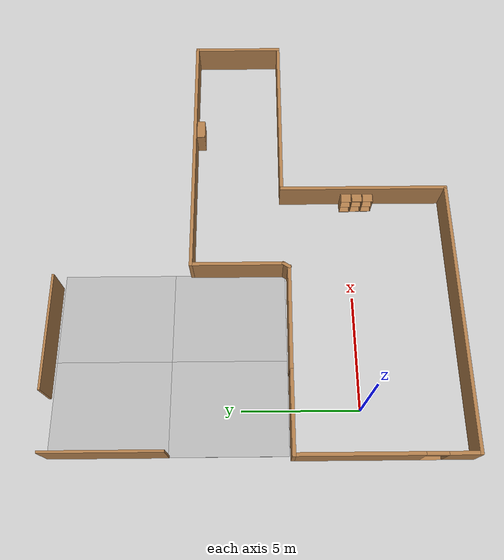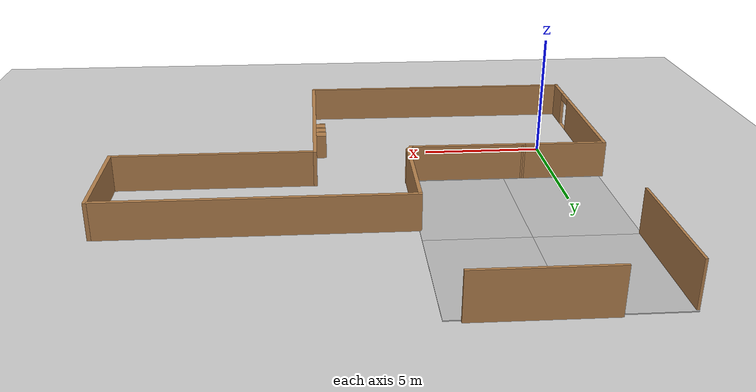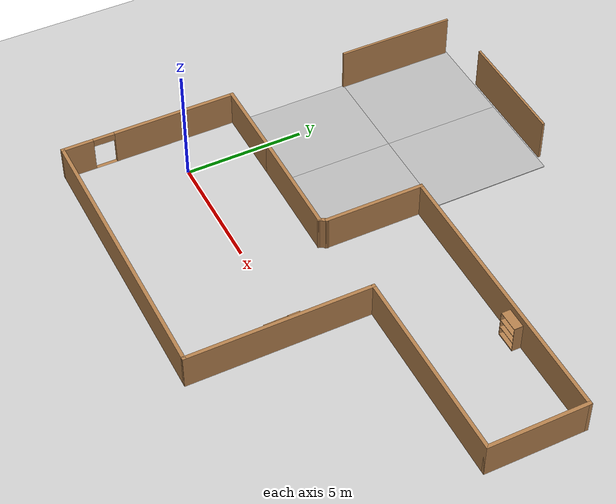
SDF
<sdf version="1.7">
 <world name="default">
  <model name="ground_plane">
   <static>1</static>
   <link name="link">
    <collision name="collision">
     <geometry><plane><normal>0 0 1</normal><size>100 100</size></plane></geometry>
     <surface>
      <contact><collide_bitmask>65535</collide_bitmask></contact>
      <friction><ode><mu>100</mu><mu2>50</mu2></ode></friction>
     </surface>
    </collision>
    <visual name="visual">
     <cast_shadows>0</cast_shadows>
     <geometry><plane><normal>0 0 1</normal><size>100 100</size></plane></geometry>
     <material>
      <script><uri>file://media/materials/scripts/gazebo.material</uri><name>Gazebo/Grey</name></script>
     </material>
    </visual>
   </link>
  </model>
  <model name="Untitled">
   <pose>8.035 1.37 0 0 -0 0</pose>
   <link name="Wall_10">
    <collision name="Wall_10_Collision">
     <geometry><box><size>4.25 0.15 1.5</size></box></geometry>
     <pose>0 0 0.75 0 -0 0</pose>
    </collision>
    <visual name="Wall_10_Visual">
     <pose>0 0 0.75 0 -0 0</pose>
     <geometry><box><size>4.25 0.15 1.5</size></box></geometry>
     <material>
      <script><uri>file://media/materials/scripts/gazebo.material</uri><name>Gazebo/Wood</name></script>
      <ambient>1 1 1 1</ambient>
     </material>
     <meta><layer>0</layer></meta>
    </visual>
    <pose>9.975 3.8 0 0 -0 1.5708</pose>
   </link>
   <link name="Wall_11">
    <collision name="Wall_11_Collision">
     <geometry><box><size>12 0.15 1.5</size></box></geometry>
     <pose>0 0 0.75 0 -0 0</pose>
    </collision>
    <visual name="Wall_11_Visual">
     <pose>0 0 0.75 0 -0 0</pose>
     <geometry><box><size>12 0.15 1.5</size></box></geometry>
     <material>
      <script><uri>file://media/materials/scripts/gazebo.material</uri><name>Gazebo/Wood</name></script>
      <ambient>1 1 1 1</ambient>
     </material>
     <meta><layer>0</layer></meta>
    </visual>
    <pose>4.05 5.85 0 0 -0 3.14159</pose>
   </link>
   <link name="Wall_12">
    <collision name="Wall_12_Collision">
     <geometry><box><size>4.25 0.15 1.5</size></box></geometry>
     <pose>0 0 0.75 0 -0 0</pose>
    </collision>
    <visual name="Wall_12_Visual">
     <pose>0 0 0.75 0 -0 0</pose>
     <geometry><box><size>4.25 0.15 1.5</size></box></geometry>
     <material>
      <script><uri>file://media/materials/scripts/gazebo.material</uri><name>Gazebo/Wood</name></script>
      <ambient>1 1 1 1</ambient>
     </material>
     <meta><layer>0</layer></meta>
    </visual>
    <pose>-1.875 3.8 0 0 -0 -1.5708</pose>
   </link>
   <link name="Wall_14">
    <collision name="Wall_14_Collision">
     <geometry><box><size>4.75 0.15 1.5</size></box></geometry>
     <pose>0 0 0.75 0 -0 0</pose>
    </collision>
    <visual name="Wall_14_Visual">
     <pose>0 0 0.75 0 -0 0</pose>
     <geometry><box><size>4.75 0.15 1.5</size></box></geometry>
     <material>
      <script><uri>file://media/materials/scripts/gazebo.material</uri><name>Gazebo/Wood</name></script>
      <ambient>1 1 1 1</ambient>
     </material>
     <meta><layer>0</layer></meta>
    </visual>
    <pose>-4.325 1.5155 0 0 -0 -0.006739</pose>
   </link>
   <link name="Wall_15">
    <collision name="Wall_15_Collision">
     <geometry><box><size>0.441548 0.15 1.5</size></box></geometry>
     <pose>0 0 0.75 0 -0 0</pose>
    </collision>
    <visual name="Wall_15_Visual">
     <pose>0 0 0.75 0 -0 0</pose>
     <geometry><box><size>0.441548 0.15 1.5</size></box></geometry>
     <material>
      <script><uri>file://media/materials/scripts/gazebo.material</uri><name>Gazebo/Wood</name></script>
      <ambient>1 1 1 1</ambient>
     </material>
     <meta><layer>0</layer></meta>
    </visual>
    <pose>-1.95 1.625 0 0 -0 1.03038</pose>
   </link>
   <link name="Wall_5">
    <collision name="Wall_5_Collision">
     <geometry><box><size>3.5 0.15 1.5</size></box></geometry>
     <pose>0 0 0.75 0 -0 0</pose>
    </collision>
    <visual name="Wall_5_Visual">
     <pose>0 0 0.75 0 -0 0</pose>
     <geometry><box><size>3.5 0.15 1.5</size></box></geometry>
     <material>
      <script><uri>file://media/materials/scripts/gazebo.material</uri><name>Gazebo/Wood</name></script>
      <ambient>1 1 1 1</ambient>
     </material>
     <meta><layer>0</layer></meta>
    </visual>
    <pose>-8.3 1.531 0 0 -0 3.14159</pose>
   </link>
   <link name="Wall_6">
    <pose>-9.975 -2.1595 0 0 -0 -1.5708</pose>
    <visual name="Wall_6_Visual_0">
     <pose>-1.12851 0 0.75 0 -0 0</pose>
     <geometry><box><size>5.27397 0.15 1.5</size></box></geometry>
     <material>
      <script><uri>file://media/materials/scripts/gazebo.material</uri><name>Gazebo/Wood</name></script>
      <ambient>1 1 1 1</ambient>
     </material>
     <meta><layer>0</layer></meta>
    </visual>
    <collision name="Wall_6_Collision_0">
     <geometry><box><size>5.27397 0.15 1.5</size></box></geometry>
     <pose>-1.12851 0 0.75 0 -0 0</pose>
    </collision>
    <visual name="Wall_6_Visual_1">
     <pose>3.08699 0 0.75 0 -0 0</pose>
     <geometry><box><size>1.35703 0.15 1.5</size></box></geometry>
     <material>
      <script><uri>file://media/materials/scripts/gazebo.material</uri><name>Gazebo/Wood</name></script>
      <ambient>1 1 1 1</ambient>
     </material>
     <meta><layer>0</layer></meta>
    </visual>
    <collision name="Wall_6_Collision_1">
     <geometry><box><size>1.35703 0.15 1.5</size></box></geometry>
     <pose>3.08699 0 0.75 0 -0 0</pose>
    </collision>
    <visual name="Wall_6_Visual_2">
     <pose>1.95847 0 0 0 -0 0</pose>
     <geometry><box><size>0.9 0.15 0</size></box></geometry>
     <material>
      <script><uri>file://media/materials/scripts/gazebo.material</uri><name>Gazebo/Wood</name></script>
      <ambient>1 1 1 1</ambient>
     </material>
     <meta><layer>0</layer></meta>
    </visual>
    <collision name="Wall_6_Collision_2">
     <geometry><box><size>0.9 0.15 0</size></box></geometry>
     <pose>1.95847 0 0 0 -0 0</pose>
    </collision>
    <visual name="Wall_6_Visual_3">
     <pose>1.95847 0 1.35 0 -0 0</pose>
     <geometry><box><size>0.9 0.15 0.3</size></box></geometry>
     <material>
      <script><uri>file://media/materials/scripts/gazebo.material</uri><name>Gazebo/Wood</name></script>
      <ambient>1 1 1 1</ambient>
     </material>
     <meta><layer>0</layer></meta>
    </visual>
    <collision name="Wall_6_Collision_3">
     <geometry><box><size>0.9 0.15 0.3</size></box></geometry>
     <pose>1.95847 0 1.35 0 -0 0</pose>
    </collision>
   </link>
   <link name="Wall_7">
    <collision name="Wall_7_Collision">
     <geometry><box><size>12 0.15 1.5</size></box></geometry>
     <pose>0 0 0.75 0 -0 0</pose>
    </collision>
    <visual name="Wall_7_Visual">
     <pose>0 0 0.75 0 -0 0</pose>
     <geometry><box><size>12 0.15 1.5</size></box></geometry>
     <material>
      <script><uri>file://media/materials/scripts/gazebo.material</uri><name>Gazebo/Wood</name></script>
      <ambient>1 1 1 1</ambient>
     </material>
     <meta><layer>0</layer></meta>
    </visual>
    <pose>-4.05 -5.85 0 0 -0 0</pose>
   </link>
   <link name="Wall_8">
    <collision name="Wall_8_Collision">
     <geometry><box><size>7.75 0.15 1.5</size></box></geometry>
     <pose>0 0 0.75 0 -0 0</pose>
    </collision>
    <visual name="Wall_8_Visual">
     <pose>0 0 0.75 0 -0 0</pose>
     <geometry><box><size>7.75 0.15 1.5</size></box></geometry>
     <material>
      <script><uri>file://media/materials/scripts/gazebo.material</uri><name>Gazebo/Wood</name></script>
      <ambient>1 1 1 1</ambient>
     </material>
     <meta><layer>0</layer></meta>
    </visual>
    <pose>1.875 -2.05 0 0 -0 1.5708</pose>
   </link>
   <link name="Wall_9">
    <collision name="Wall_9_Collision">
     <geometry><box><size>8.25 0.15 1.5</size></box></geometry>
     <pose>0 0 0.75 0 -0 0</pose>
    </collision>
    <visual name="Wall_9_Visual">
     <pose>0 0 0.75 0 -0 0</pose>
     <geometry><box><size>8.25 0.15 1.5</size></box></geometry>
     <material>
      <script><uri>file://media/materials/scripts/gazebo.material</uri><name>Gazebo/Wood</name></script>
      <ambient>1 1 1 1</ambient>
     </material>
     <meta><layer>0</layer></meta>
    </visual>
    <pose>5.925 1.75 0 0 -0 0</pose>
   </link>
   <static>1</static>
  </model>
  <model name="mud_box">
   <static>1</static>
   <link name="link">
    <collision name="collision"><geometry><box><size>8 10 0.2</size></box></geometry></collision>
    <visual name="visual_1">
     <pose>-2 2.5 0 0 -0 0</pose>
     <cast_shadows>0</cast_shadows>
     <geometry><box><size>4 5 0.2</size></box></geometry>
     <material>
      <script>
       <uri>model://mud_box/materials/scripts</uri>
       <uri>model://mud_box/materials/textures</uri>
       <name>vrc/mud</name>
      </script>
     </material>
    </visual>
    <visual name="visual_2">
     <pose>2 2.5 0 0 -0 0</pose>
     <cast_shadows>0</cast_shadows>
     <geometry><box><size>4 5 0.2</size></box></geometry>
     <material>
      <script>
       <uri>model://mud_box/materials/scripts</uri>
       <uri>model://mud_box/materials/textures</uri>
       <name>vrc/mud</name>
      </script>
     </material>
    </visual>
    <visual name="visual_3">
     <pose>2 -2.5 0 0 -0 0</pose>
     <cast_shadows>0</cast_shadows>
     <geometry><box><size>4 5 0.2</size></box></geometry>
     <material>
      <script>
       <uri>model://mud_box/materials/scripts</uri>
       <uri>model://mud_box/materials/textures</uri>
       <name>vrc/mud</name>
      </script>
     </material>
    </visual>
    <visual name="visual_4">
     <pose>-2 -2.5 0 0 -0 0</pose>
     <cast_shadows>0</cast_shadows>
     <geometry><box><size>4 5 0.2</size></box></geometry>
     <material>
      <script>
       <uri>model://mud_box/materials/scripts</uri>
       <uri>model://mud_box/materials/textures</uri>
       <name>vrc/mud</name>
      </script>
     </material>
    </visual>
   </link>
   <pose>2.16605 8.01541 -0.090493 0 -0 0</pose>
  </model>
  <model name="fence">
   <static>1</static>
   <link name="link">
    <pose>0 0 0.915 0 -0 0</pose>
    <collision name="collision"><geometry><box><size>0.1 5 1.83</size></box></geometry></collision>
    <visual name="visual">
     <cast_shadows>0</cast_shadows>
     <geometry><box><size>0.1 5 1.83</size></box></geometry>
     <material>
      <script>
       <uri>https://fuel.ignitionrobotics.org/1.0/athackst/models/fence/2/files/materials/scripts</uri>
       <uri>https://fuel.ignitionrobotics.org/1.0/athackst/models/fence/2/files/materials/textures</uri>
       <name>Fence/WoodBoarding</name>
      </script>
     </material>
    </visual>
   </link>
   <pose>-1.80264 10.4623 0 0 -0 0</pose>
  </model>
  <model name="fence_0">
   <static>1</static>
   <link name="link">
    <pose>0 0 0.915 0 -0 0</pose>
    <collision name="collision"><geometry><box><size>0.1 5 1.83</size></box></geometry></collision>
    <visual name="visual">
     <cast_shadows>0</cast_shadows>
     <geometry><box><size>0.1 5 1.83</size></box></geometry>
     <material>
      <script>
       <uri>https://fuel.ignitionrobotics.org/1.0/athackst/models/fence/2/files/materials/scripts</uri>
       <uri>https://fuel.ignitionrobotics.org/1.0/athackst/models/fence/2/files/materials/textures</uri>
       <name>Fence/WoodBoarding</name>
      </script>
     </material>
    </visual>
   </link>
   <pose>3.10267 13.1276 0 0 -0 1.56884</pose>
  </model>
  <model name="bookshelf">
   <static>1</static>
   <link name="link">
    <inertial><mass>1</mass></inertial>
    <collision name="back">
     <pose>0 0.005 0.6 0 -0 0</pose>
     <geometry><box><size>0.9 0.01 1.2</size></box></geometry>
    </collision>
    <visual name="visual1">
     <pose>0 0.005 0.6 0 -0 0</pose>
     <geometry><box><size>0.9 0.01 1.2</size></box></geometry>
     <material>
      <script><uri>file://media/materials/scripts/gazebo.material</uri><name>Gazebo/Wood</name></script>
     </material>
    </visual>
    <collision name="left_side">
     <pose>0.45 -0.195 0.6 0 -0 0</pose>
     <geometry><box><size>0.02 0.4 1.2</size></box></geometry>
    </collision>
    <visual name="visual2">
     <pose>0.45 -0.195 0.6 0 -0 0</pose>
     <geometry><box><size>0.02 0.4 1.2</size></box></geometry>
     <material>
      <script><uri>file://media/materials/scripts/gazebo.material</uri><name>Gazebo/Wood</name></script>
     </material>
    </visual>
    <collision name="right_side">
     <pose>-0.45 -0.195 0.6 0 -0 0</pose>
     <geometry><box><size>0.02 0.4 1.2</size></box></geometry>
    </collision>
    <visual name="visual3">
     <pose>-0.45 -0.195 0.6 0 -0 0</pose>
     <geometry><box><size>0.02 0.4 1.2</size></box></geometry>
     <material>
      <script><uri>file://media/materials/scripts/gazebo.material</uri><name>Gazebo/Wood</name></script>
     </material>
    </visual>
    <collision name="bottom">
     <pose>0 -0.195 0.03 0 -0 0</pose>
     <geometry><box><size>0.88 0.4 0.06</size></box></geometry>
    </collision>
    <visual name="visual4">
     <pose>0 -0.195 0.03 0 -0 0</pose>
     <geometry><box><size>0.88 0.4 0.06</size></box></geometry>
     <material>
      <script><uri>file://media/materials/scripts/gazebo.material</uri><name>Gazebo/Wood</name></script>
     </material>
    </visual>
    <collision name="top">
     <pose>0 -0.195 1.19 0 -0 0</pose>
     <geometry><box><size>0.88 0.4 0.02</size></box></geometry>
    </collision>
    <visual name="visual5">
     <pose>0 -0.195 1.19 0 -0 0</pose>
     <geometry><box><size>0.88 0.4 0.02</size></box></geometry>
     <material>
      <script><uri>file://media/materials/scripts/gazebo.material</uri><name>Gazebo/Wood</name></script>
     </material>
    </visual>
    <collision name="low_shelf">
     <pose>0 -0.195 0.43 0 -0 0</pose>
     <geometry><box><size>0.88 0.4 0.02</size></box></geometry>
    </collision>
    <visual name="visual6">
     <pose>0 -0.195 0.43 0 -0 0</pose>
     <geometry><box><size>0.88 0.4 0.02</size></box></geometry>
     <material>
      <script><uri>file://media/materials/scripts/gazebo.material</uri><name>Gazebo/Wood</name></script>
     </material>
    </visual>
    <collision name="high_shelf">
     <pose>0 -0.195 0.8 0 -0 0</pose>
     <geometry><box><size>0.88 0.4 0.02</size></box></geometry>
    </collision>
    <visual name="visual7">
     <pose>0 -0.195 0.8 0 -0 0</pose>
     <geometry><box><size>0.88 0.4 0.02</size></box></geometry>
     <material>
      <script><uri>file://media/materials/scripts/gazebo.material</uri><name>Gazebo/Wood</name></script>
     </material>
    </visual>
   </link>
   <pose>13.3788 7.16074 0 0 -0 0</pose>
  </model>
  <model name="cabinet">
   <static>1</static>
   <link name="cabinet_bottom_plate">
    <inertial>
     <pose>0 0 -1 0 -0 0</pose>
     <inertia><ixx>2.05</ixx><ixy>0</ixy><ixz>0</ixz><iyy>2.05</iyy><iyz>0</iyz><izz>2.05</izz></inertia>
     <mass>25</mass>
    </inertial>
    <collision name="cabinet_bottom_plate_geom">
     <pose>0 0 0.01 0 -0 0</pose>
     <geometry><box><size>0.45 0.45 0.02</size></box></geometry>
    </collision>
    <visual name="cabinet_bottom_plate_geom_visual">
     <pose>0 0 0.01 0 -0 0</pose>
     <geometry><box><size>0.45 0.45 0.02</size></box></geometry>
     <material>
      <script><uri>file://media/materials/scripts/gazebo.material</uri><name>Gazebo/Wood</name></script>
     </material>
    </visual>
    <collision name="cabinet_bottom_plate_geom_cabinet_back_plate">
     <pose>0.235 0 0.51 0 -0 0</pose>
     <geometry><box><size>0.02 0.45 1.02</size></box></geometry>
    </collision>
    <visual name="cabinet_bottom_plate_geom_cabinet_back_plate_visual">
     <pose>0.235 0 0.51 0 -0 0</pose>
     <geometry><box><size>0.02 0.45 1.02</size></box></geometry>
     <material>
      <script><uri>file://media/materials/scripts/gazebo.material</uri><name>Gazebo/Wood</name></script>
     </material>
    </visual>
    <collision name="cabinet_bottom_plate_geom_cabinet_left_plate">
     <pose>0 0.235 0.51 0 -0 0</pose>
     <geometry><box><size>0.45 0.02 1.02</size></box></geometry>
    </collision>
    <visual name="cabinet_bottom_plate_geom_cabinet_left_plate_visual">
     <pose>0 0.235 0.51 0 -0 0</pose>
     <geometry><box><size>0.45 0.02 1.02</size></box></geometry>
     <material>
      <script><uri>file://media/materials/scripts/gazebo.material</uri><name>Gazebo/Wood</name></script>
     </material>
    </visual>
    <collision name="cabinet_bottom_plate_geom_cabinet_middle_plate">
     <pose>0 0 0.51 0 -0 0</pose>
     <geometry><box><size>0.45 0.45 0.02</size></box></geometry>
    </collision>
    <visual name="cabinet_bottom_plate_geom_cabinet_middle_plate_visual">
     <pose>0 0 0.51 0 -0 0</pose>
     <geometry><box><size>0.45 0.45 0.02</size></box></geometry>
     <material>
      <script><uri>file://media/materials/scripts/gazebo.material</uri><name>Gazebo/Wood</name></script>
     </material>
    </visual>
    <collision name="cabinet_bottom_plate_geom_cabinet_right_plate">
     <pose>0 -0.235 0.51 0 -0 0</pose>
     <geometry><box><size>0.45 0.02 1.02</size></box></geometry>
    </collision>
    <visual name="cabinet_bottom_plate_geom_cabinet_right_plate_visual">
     <pose>0 -0.235 0.51 0 -0 0</pose>
     <geometry><box><size>0.45 0.02 1.02</size></box></geometry>
     <material>
      <script><uri>file://media/materials/scripts/gazebo.material</uri><name>Gazebo/Wood</name></script>
     </material>
    </visual>
    <collision name="cabinet_bottom_plate_geom_cabinet_top_plate">
     <pose>0 0 1.01 0 -0 0</pose>
     <geometry><box><size>0.45 0.45 0.02</size></box></geometry>
    </collision>
    <visual name="cabinet_bottom_plate_geom_cabinet_top_plate_visual">
     <pose>0 0 1.01 0 -0 0</pose>
     <geometry><box><size>0.45 0.45 0.02</size></box></geometry>
     <material>
      <script><uri>file://media/materials/scripts/gazebo.material</uri><name>Gazebo/Wood</name></script>
     </material>
    </visual>
   </link>
   <pose>9.65126 -0.407227 0 0 -0 0</pose>
  </model>
  <model name="cabinet_0">
   <static>1</static>
   <link name="cabinet_bottom_plate">
    <inertial>
     <pose>0 0 -1 0 -0 0</pose>
     <inertia><ixx>2.05</ixx><ixy>0</ixy><ixz>0</ixz><iyy>2.05</iyy><iyz>0</iyz><izz>2.05</izz></inertia>
     <mass>25</mass>
    </inertial>
    <collision name="cabinet_bottom_plate_geom">
     <pose>0 0 0.01 0 -0 0</pose>
     <geometry><box><size>0.45 0.45 0.02</size></box></geometry>
    </collision>
    <visual name="cabinet_bottom_plate_geom_visual">
     <pose>0 0 0.01 0 -0 0</pose>
     <geometry><box><size>0.45 0.45 0.02</size></box></geometry>
     <material>
      <script><uri>file://media/materials/scripts/gazebo.material</uri><name>Gazebo/Wood</name></script>
     </material>
    </visual>
    <collision name="cabinet_bottom_plate_geom_cabinet_back_plate">
     <pose>0.235 0 0.51 0 -0 0</pose>
     <geometry><box><size>0.02 0.45 1.02</size></box></geometry>
    </collision>
    <visual name="cabinet_bottom_plate_geom_cabinet_back_plate_visual">
     <pose>0.235 0 0.51 0 -0 0</pose>
     <geometry><box><size>0.02 0.45 1.02</size></box></geometry>
     <material>
      <script><uri>file://media/materials/scripts/gazebo.material</uri><name>Gazebo/Wood</name></script>
     </material>
    </visual>
    <collision name="cabinet_bottom_plate_geom_cabinet_left_plate">
     <pose>0 0.235 0.51 0 -0 0</pose>
     <geometry><box><size>0.45 0.02 1.02</size></box></geometry>
    </collision>
    <visual name="cabinet_bottom_plate_geom_cabinet_left_plate_visual">
     <pose>0 0.235 0.51 0 -0 0</pose>
     <geometry><box><size>0.45 0.02 1.02</size></box></geometry>
     <material>
      <script><uri>file://media/materials/scripts/gazebo.material</uri><name>Gazebo/Wood</name></script>
     </material>
    </visual>
    <collision name="cabinet_bottom_plate_geom_cabinet_middle_plate">
     <pose>0 0 0.51 0 -0 0</pose>
     <geometry><box><size>0.45 0.45 0.02</size></box></geometry>
    </collision>
    <visual name="cabinet_bottom_plate_geom_cabinet_middle_plate_visual">
     <pose>0 0 0.51 0 -0 0</pose>
     <geometry><box><size>0.45 0.45 0.02</size></box></geometry>
     <material>
      <script><uri>file://media/materials/scripts/gazebo.material</uri><name>Gazebo/Wood</name></script>
     </material>
    </visual>
    <collision name="cabinet_bottom_plate_geom_cabinet_right_plate">
     <pose>0 -0.235 0.51 0 -0 0</pose>
     <geometry><box><size>0.45 0.02 1.02</size></box></geometry>
    </collision>
    <visual name="cabinet_bottom_plate_geom_cabinet_right_plate_visual">
     <pose>0 -0.235 0.51 0 -0 0</pose>
     <geometry><box><size>0.45 0.02 1.02</size></box></geometry>
     <material>
      <script><uri>file://media/materials/scripts/gazebo.material</uri><name>Gazebo/Wood</name></script>
     </material>
    </visual>
    <collision name="cabinet_bottom_plate_geom_cabinet_top_plate">
     <pose>0 0 1.01 0 -0 0</pose>
     <geometry><box><size>0.45 0.45 0.02</size></box></geometry>
    </collision>
    <visual name="cabinet_bottom_plate_geom_cabinet_top_plate_visual">
     <pose>0 0 1.01 0 -0 0</pose>
     <geometry><box><size>0.45 0.45 0.02</size></box></geometry>
     <material>
      <script><uri>file://media/materials/scripts/gazebo.material</uri><name>Gazebo/Wood</name></script>
     </material>
    </visual>
   </link>
   <pose>9.63615 0.098483 0 0 -0 0</pose>
  </model>
  <model name="cabinet_1">
   <static>1</static>
   <link name="cabinet_bottom_plate">
    <inertial>
     <pose>0 0 -1 0 -0 0</pose>
     <inertia><ixx>2.05</ixx><ixy>0</ixy><ixz>0</ixz><iyy>2.05</iyy><iyz>0</iyz><izz>2.05</izz></inertia>
     <mass>25</mass>
    </inertial>
    <collision name="cabinet_bottom_plate_geom">
     <pose>0 0 0.01 0 -0 0</pose>
     <geometry><box><size>0.45 0.45 0.02</size></box></geometry>
    </collision>
    <visual name="cabinet_bottom_plate_geom_visual">
     <pose>0 0 0.01 0 -0 0</pose>
     <geometry><box><size>0.45 0.45 0.02</size></box></geometry>
     <material>
      <script><uri>file://media/materials/scripts/gazebo.material</uri><name>Gazebo/Wood</name></script>
     </material>
    </visual>
    <collision name="cabinet_bottom_plate_geom_cabinet_back_plate">
     <pose>0.235 0 0.51 0 -0 0</pose>
     <geometry><box><size>0.02 0.45 1.02</size></box></geometry>
    </collision>
    <visual name="cabinet_bottom_plate_geom_cabinet_back_plate_visual">
     <pose>0.235 0 0.51 0 -0 0</pose>
     <geometry><box><size>0.02 0.45 1.02</size></box></geometry>
     <material>
      <script><uri>file://media/materials/scripts/gazebo.material</uri><name>Gazebo/Wood</name></script>
     </material>
    </visual>
    <collision name="cabinet_bottom_plate_geom_cabinet_left_plate">
     <pose>0 0.235 0.51 0 -0 0</pose>
     <geometry><box><size>0.45 0.02 1.02</size></box></geometry>
    </collision>
    <visual name="cabinet_bottom_plate_geom_cabinet_left_plate_visual">
     <pose>0 0.235 0.51 0 -0 0</pose>
     <geometry><box><size>0.45 0.02 1.02</size></box></geometry>
     <material>
      <script><uri>file://media/materials/scripts/gazebo.material</uri><name>Gazebo/Wood</name></script>
     </material>
    </visual>
    <collision name="cabinet_bottom_plate_geom_cabinet_middle_plate">
     <pose>0 0 0.51 0 -0 0</pose>
     <geometry><box><size>0.45 0.45 0.02</size></box></geometry>
    </collision>
    <visual name="cabinet_bottom_plate_geom_cabinet_middle_plate_visual">
     <pose>0 0 0.51 0 -0 0</pose>
     <geometry><box><size>0.45 0.45 0.02</size></box></geometry>
     <material>
      <script><uri>file://media/materials/scripts/gazebo.material</uri><name>Gazebo/Wood</name></script>
     </material>
    </visual>
    <collision name="cabinet_bottom_plate_geom_cabinet_right_plate">
     <pose>0 -0.235 0.51 0 -0 0</pose>
     <geometry><box><size>0.45 0.02 1.02</size></box></geometry>
    </collision>
    <visual name="cabinet_bottom_plate_geom_cabinet_right_plate_visual">
     <pose>0 -0.235 0.51 0 -0 0</pose>
     <geometry><box><size>0.45 0.02 1.02</size></box></geometry>
     <material>
      <script><uri>file://media/materials/scripts/gazebo.material</uri><name>Gazebo/Wood</name></script>
     </material>
    </visual>
    <collision name="cabinet_bottom_plate_geom_cabinet_top_plate">
     <pose>0 0 1.01 0 -0 0</pose>
     <geometry><box><size>0.45 0.45 0.02</size></box></geometry>
    </collision>
    <visual name="cabinet_bottom_plate_geom_cabinet_top_plate_visual">
     <pose>0 0 1.01 0 -0 0</pose>
     <geometry><box><size>0.45 0.45 0.02</size></box></geometry>
     <material>
      <script><uri>file://media/materials/scripts/gazebo.material</uri><name>Gazebo/Wood</name></script>
     </material>
    </visual>
   </link>
   <pose>9.65623 -0.908227 0 0 -0 0</pose>
  </model>
 </world>
</sdf>
